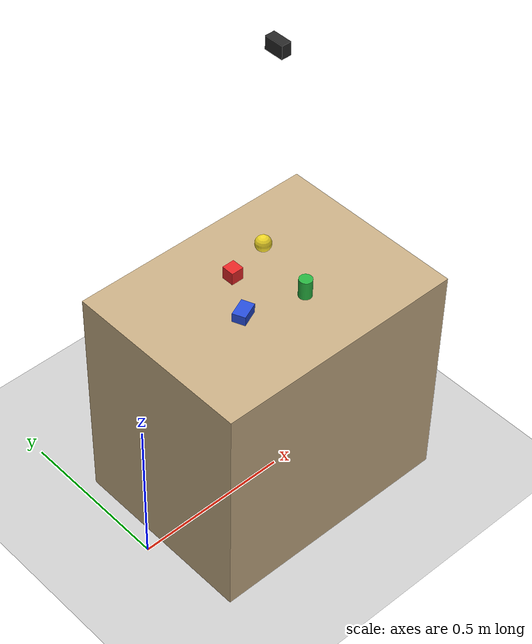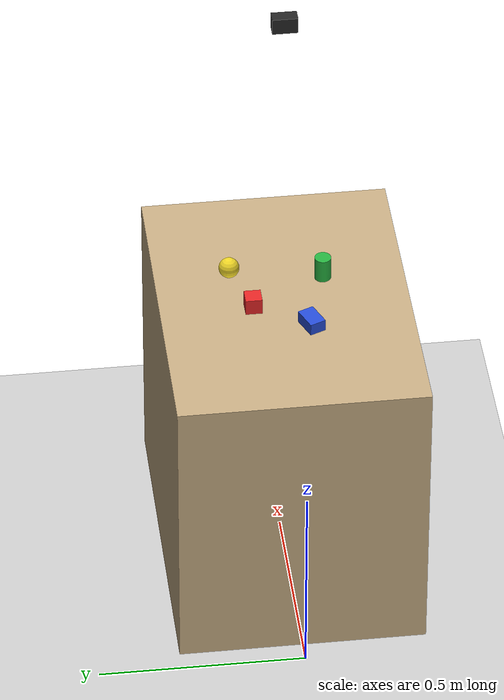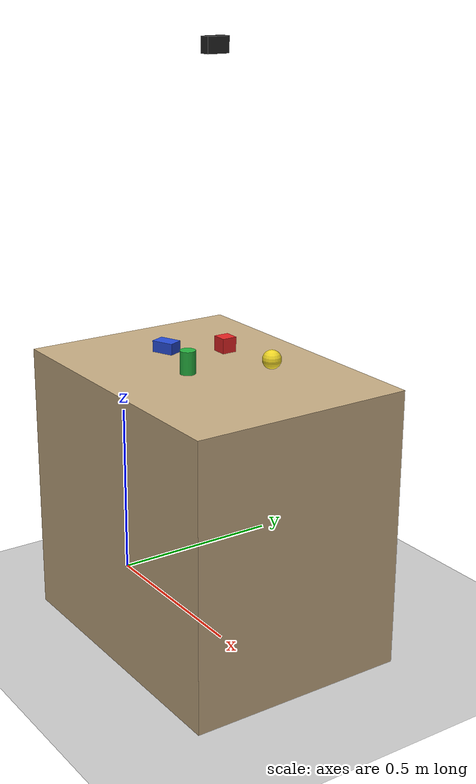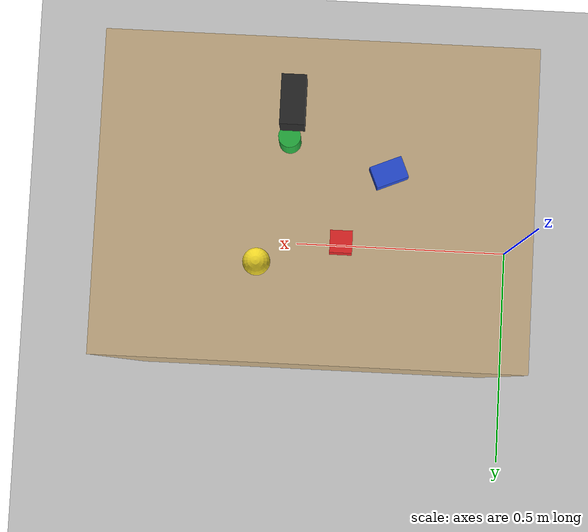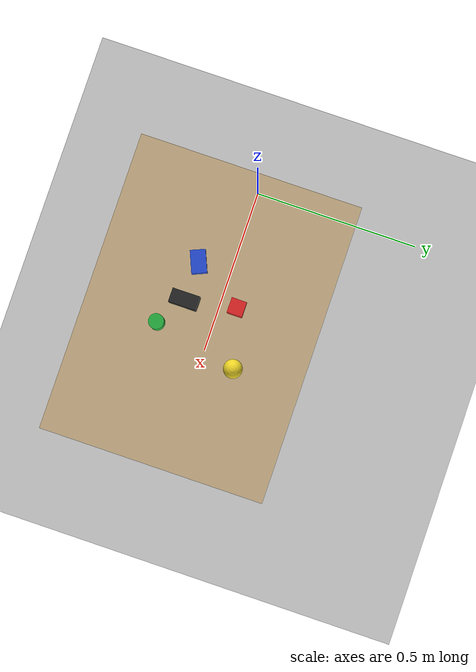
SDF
<?xml version="1.0" ?>
<sdf version="1.6">
  <world name="tabletop_topdown">
    <!-- 桌面顶视采集场景：桌子 + 若干物体 + 正上方相机 -->
    <physics type="ode">
      <max_step_size>0.001</max_step_size>
      <real_time_update_rate>1000</real_time_update_rate>
    </physics>
    <gravity>0 0 -9.81</gravity>
    <magnetic_field>6e-06 2.3e-05 -4.2e-05</magnetic_field>
    <atmosphere type="adiabatic"/>

    <scene>
      <ambient>0.5 0.5 0.5 1</ambient>
      <background>0.7 0.7 0.7 1</background>
      <shadows>true</shadows>
    </scene>

    <light name="sun" type="directional">
      <cast_shadows>true</cast_shadows>
      <pose>0 0 10 0 0 0</pose>
      <diffuse>0.85 0.85 0.8 1</diffuse>
      <specular>0.3 0.3 0.3 1</specular>
      <attenuation>
        <range>1000</range>
        <constant>0.9</constant>
        <linear>0.01</linear>
        <quadratic>0.001</quadratic>
      </attenuation>
      <direction>-0.3 0.2 -0.9</direction>
    </light>

    <include>
      <uri>model://ground_plane</uri>
    </include>

    <!-- 工作台：桌面中心约在机械臂前方 x=0.45，高度 0.75 m，请按真机桌面改 size/pose -->
    <model name="work_table">
      <static>true</static>
      <pose>0.45 0 0.375 0 0 0</pose>
      <link name="link">
        <collision name="collision">
          <geometry>
            <box>
              <size>0.80 0.60 0.75</size>
            </box>
          </geometry>
        </collision>
        <visual name="visual">
          <geometry>
            <box>
              <size>0.80 0.60 0.75</size>
            </box>
          </geometry>
          <material>
            <ambient>0.72 0.62 0.48 1</ambient>
            <diffuse>0.78 0.68 0.52 1</diffuse>
          </material>
        </visual>
      </link>
    </model>

    <!-- 桌面物体（占位，后续可换成真机对应 mesh）桌面 z≈0.75 -->
    <model name="obj_red_cube">
      <pose>0.40 0.08 0.79 0 0 0</pose>
      <link name="link">
        <inertial>
          <mass>0.05</mass>
          <inertia>
            <ixx>4e-5</ixx><iyy>4e-5</iyy><izz>4e-5</izz>
            <ixy>0</ixy><ixz>0</ixz><iyz>0</iyz>
          </inertia>
        </inertial>
        <collision name="collision">
          <geometry><box><size>0.04 0.04 0.04</size></box></geometry>
        </collision>
        <visual name="visual">
          <geometry><box><size>0.04 0.04 0.04</size></box></geometry>
          <material>
            <ambient>0.8 0.1 0.1 1</ambient>
            <diffuse>0.9 0.15 0.15 1</diffuse>
          </material>
        </visual>
      </link>
    </model>

    <model name="obj_green_cylinder">
      <pose>0.50 -0.10 0.80 0 0 0</pose>
      <link name="link">
        <inertial>
          <mass>0.06</mass>
          <inertia>
            <ixx>5e-5</ixx><iyy>5e-5</iyy><izz>3e-5</izz>
            <ixy>0</ixy><ixz>0</ixz><iyz>0</iyz>
          </inertia>
        </inertial>
        <collision name="collision">
          <geometry><cylinder><radius>0.02</radius><length>0.06</length></cylinder></geometry>
        </collision>
        <visual name="visual">
          <geometry><cylinder><radius>0.02</radius><length>0.06</length></cylinder></geometry>
          <material>
            <ambient>0.1 0.55 0.2 1</ambient>
            <diffuse>0.15 0.7 0.25 1</diffuse>
          </material>
        </visual>
      </link>
    </model>

    <model name="obj_blue_box">
      <pose>0.32 -0.05 0.785 0 0 0.4</pose>
      <link name="link">
        <inertial>
          <mass>0.08</mass>
          <inertia>
            <ixx>8e-5</ixx><iyy>1e-4</iyy><izz>1.2e-4</izz>
            <ixy>0</ixy><ixz>0</ixz><iyz>0</iyz>
          </inertia>
        </inertial>
        <collision name="collision">
          <geometry><box><size>0.06 0.04 0.03</size></box></geometry>
        </collision>
        <visual name="visual">
          <geometry><box><size>0.06 0.04 0.03</size></box></geometry>
          <material>
            <ambient>0.1 0.2 0.7 1</ambient>
            <diffuse>0.15 0.3 0.85 1</diffuse>
          </material>
        </visual>
      </link>
    </model>

    <model name="obj_yellow_sphere">
      <pose>0.55 0.12 0.78 0 0 0</pose>
      <link name="link">
        <inertial>
          <mass>0.04</mass>
          <inertia>
            <ixx>2e-5</ixx><iyy>2e-5</iyy><izz>2e-5</izz>
            <ixy>0</ixy><ixz>0</ixz><iyz>0</iyz>
          </inertia>
        </inertial>
        <collision name="collision">
          <geometry><sphere><radius>0.025</radius></sphere></geometry>
        </collision>
        <visual name="visual">
          <geometry><sphere><radius>0.025</radius></sphere></geometry>
          <material>
            <ambient>0.8 0.7 0.1 1</ambient>
            <diffuse>0.95 0.85 0.15 1</diffuse>
          </material>
        </visual>
      </link>
    </model>

    <!-- 顶视相机：在桌面正上方朝下。pose: x y z roll pitch yaw，pitch=90° 朝下 -->
    <model name="topdown_camera">
      <static>true</static>
      <pose>0.45 0 1.55 0 1.5708 0</pose>
      <link name="link">
        <visual name="cam_body">
          <pose>0 0 0.02 0 0 0</pose>
          <geometry><box><size>0.04 0.06 0.03</size></box></geometry>
          <material>
            <ambient>0.1 0.1 0.1 1</ambient>
            <diffuse>0.15 0.15 0.15 1</diffuse>
          </material>
        </visual>
        <sensor name="top_camera" type="camera">
          <always_on>true</always_on>
          <update_rate>10</update_rate>
          <visualize>true</visualize>
          <camera name="top_camera">
            <horizontal_fov>1.047</horizontal_fov>
            <image>
              <width>640</width>
              <height>480</height>
              <format>R8G8B8</format>
            </image>
            <clip>
              <near>0.05</near>
              <far>8.0</far>
            </clip>
          </camera>
          <plugin name="topdown_camera_controller" filename="libgazebo_ros_camera.so">
            <ros>
              <namespace>top_camera</namespace>
            </ros>
            <camera_name>top_camera</camera_name>
            <frame_name>top_camera_optical_frame</frame_name>
            <hack_baseline>0.0</hack_baseline>
            <min_depth>0.05</min_depth>
            <max_depth>8.0</max_depth>
          </plugin>
        </sensor>
      </link>
    </model>
  </world>
</sdf>
